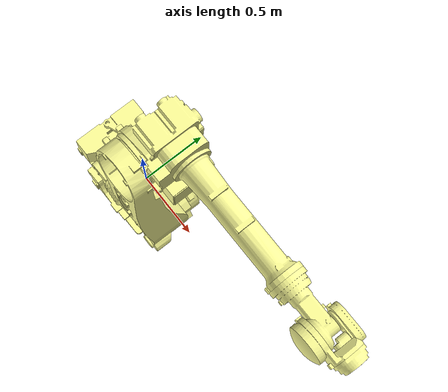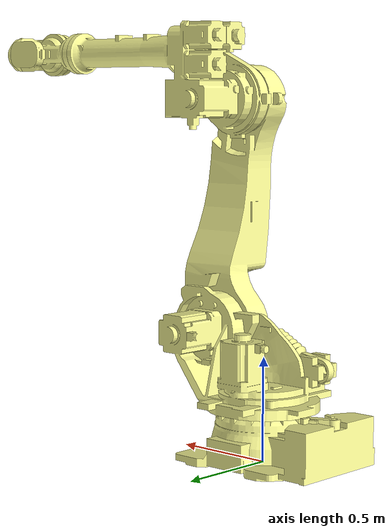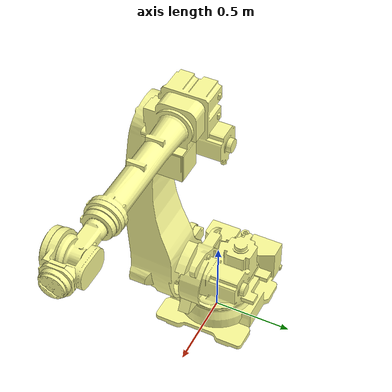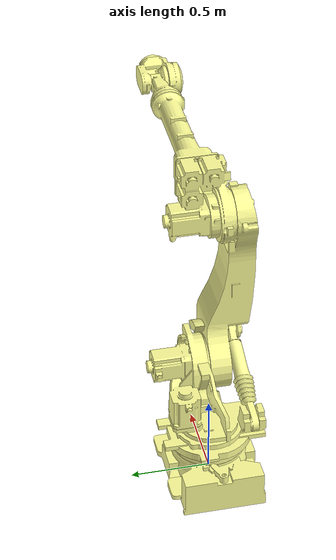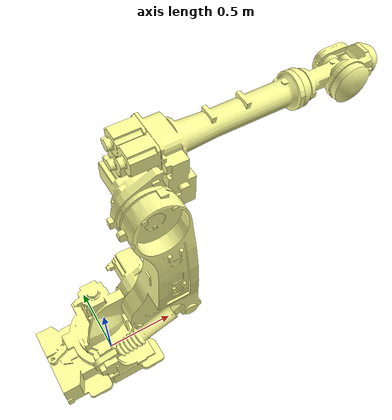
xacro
<?xml version="1.0"?>
<robot xmlns:xacro="http://www.ros.org/wiki/xacro" name="HS220">
    <!-- Links -->

    <link name="world"/>

    <link name="base_link">
        <inertial>
            <origin xyz="-0.10064 4.2977E-06 0.12679" rpy="0 0 0"/>
            <mass value="72.519"/>
            <inertia
		ixx="1.5867"
		ixy="-0.0012389"
		ixz="0.21442"
		iyy="2.8116"
		iyz="-0.0006098"
		izz="3.9898" />
        </inertial>
        <visual>
            <origin xyz="0 0 0" rpy="0 0 0"/>
            <geometry>
                <mesh filename="package://ned2_moveit/HS220/meshes/base_link.STL"/>
            </geometry>
            <material name="">
		<color rgba="1 1 0.6 1" />
      		</material>
        </visual>
        <collision>
            <origin xyz="0 0 0" rpy="0 0 0"/>
            <geometry>
		<mesh filename="package://ned2_moveit/HS220/meshes/base_link.STL" />
	      </geometry>
        </collision>
    </link>

    <link name="led_ring_link">
    </link>

    <link name="shoulder_link">
        <inertial>
            <origin xyz="0.099185 0.040289 0.17611" rpy="0 0 0"/>
            <mass value="48.386"/>
            <inertia
		ixx="1.2542"
		ixy="-0.12807"
		ixz="-0.49169"
		iyy="1.7895"
		iyz="-0.063625"
		izz="1.6768" />
        </inertial>
        <visual>
            <origin xyz="0 0 0" rpy="0 0 0"/>
            <geometry>
                <mesh filename="package://ned2_moveit/HS220/meshes/link_01.STL"/>
            </geometry>
            <material name="">
		<color rgba="1 1 0.6 1" />
      		</material>
        </visual>
        <collision>
            <origin xyz="0 0 0" rpy="0 0 0"/>
            <geometry>
                <mesh filename="package://ned2_moveit/HS220/meshes/link_01.STL"/>
            </geometry>
        </collision>
    </link>

    <link name="arm_link">
        <inertial>
            <origin xyz="0.066298 -0.15035 0.48151" rpy="0 0 0"/>
            <mass value="49.92"/>
            <inertia
		ixx="5.2272"
		ixy="-0.0014584"
		ixz="0.19792"
		iyy="5.3896"
		iyz="0.68752"
		izz="0.72966" />
        </inertial>
        <visual>
            <origin xyz="0 0 0" rpy="0 0 0"/>
            <geometry>
                <mesh filename="package://ned2_moveit/HS220/meshes/link_02.STL"/>
            </geometry>
            <material name="">
		<color rgba="1 1 0.6 1" />
	      </material>
        </visual>
        <collision>
            <origin xyz="0 0 0" rpy="0 0 0"/>
            <geometry>
                <mesh filename="package://ned2_moveit/HS220/meshes/link_02.STL"/>
            </geometry>
        </collision>
    </link>

    <link name="elbow_link">
        <inertial>
            <origin xyz="0.17402 0.16038 0.10935" rpy="0 0 0"/>
            <mass value="57.421"/>
            <inertia
		ixx="0.59891"
		ixy="-0.024944"
		ixz="-0.060521"
		iyy="1.4319"
		iyz="-0.027347"
		izz="1.1563" />
        </inertial>
        <visual>
            <origin xyz="0 0 0" rpy="0 0 0"/>
            <geometry>
                <mesh filename="package://ned2_moveit/HS220/meshes/link_03.STL"/>
            </geometry>
            <material name="">
		<color rgba="1 1 0.6 1" />
	      </material>
        </visual>
        <collision>
            <origin xyz="0 0 0" rpy="0 0 0"/>
            <geometry>
                <mesh filename="package://ned2_moveit/HS220/meshes/link_03.STL"/>
            </geometry>
        </collision>
    </link>

    <link name="forearm_link">
        <inertial>
            <origin xyz="0.062307 -0.0026709 -3.5263E-08" rpy="0 0 0"/>
            <mass value="5.2654"/>
            <inertia
		ixx="0.017275"
		ixy="0.0015212"
		ixz="6.3008E-09"
		iyy="0.033969"
		iyz="-1.5585E-09"
		izz="0.033333" />
        </inertial>
        <visual>
            <origin xyz="0 0 0" rpy="0 0 0"/>
            <geometry>
                <mesh filename="package://ned2_moveit/HS220/meshes/link_04.STL"/>
            </geometry>
            <material name="">
		<color rgba="1 1 0.6 1" />
	      </material>
        </visual>
        <collision>
            <origin xyz="0 0 0" rpy="0 0 0"/>
            <geometry>
                <mesh filename="package://ned2_moveit/HS220/meshes/link_04.STL"/>
            </geometry>
        </collision>
    </link>

    <link name="wrist_link">
        <inertial>
            <origin xyz="0.027034 0.015188 6.8589E-05" rpy="0 0 0"/>
            <mass value="6.256"/>
            <inertia
		ixx="0.027335"
		ixy="0.00047037"
		ixz="-3.7423E-05"
		iyy="0.037076"
		iyz="5.4798E-06"
		izz="0.035004" />
        </inertial>
        <visual>
            <origin xyz="0 0 0"
                    rpy="0 0 0"/>
            <geometry>
                <mesh filename="package://ned2_moveit/HS220/meshes/link_05.STL"/>
            </geometry>
            <material name="">
		<color rgba="1 1 0.6 1" />
	      </material>
        </visual>
        <collision>
            <origin xyz="0 0 0"
                    rpy="0 0 0"/>
            <geometry>
                <mesh filename="package://ned2_moveit/HS220/meshes/link_05.STL"/>
            </geometry>
        </collision>
    </link>

    <link name="hand_link">
        <inertial>
            <origin xyz="0.016758 5.2391E-06 -1.7361E-08" rpy="0 0 0"/>
            <mass value="1.5928"/>
            <inertia
		ixx="0.0054416"
		ixy="-3.7296E-07"
		ixz="8.7708E-10"
		iyy="0.0034471"
		iyz="4.4172E-07"
		izz="0.003445" />
        </inertial>
        <visual>
            <origin xyz="0 0 0" rpy="0 0 0"/>
            <geometry>
                <mesh filename="package://ned2_moveit/HS220/meshes/link_06.STL"/>
            </geometry>
            <material name="">
		<color rgba="1 1 0.6 1" />
	      </material>
        </visual>
        <collision>
            <origin xyz="0 0 0" rpy="0 0 0"/>
            <geometry>
                <mesh filename="package://ned2_moveit/HS220/meshes/link_06.STL"/>
            </geometry>
        </collision>
    </link>

    <link name="tool_link">
    </link>

    <!-- Joints -->

    <joint name="joint_world" type="fixed">
        <parent link="world"/>
        <child link="base_link"/>
        <origin xyz="0 0 0" rpy="0 0 0"/>
    </joint>

    <joint name="joint_1" type="revolute">
        <origin xyz="0.0006505 7.3191E-05 0.253" rpy="0 0 0"/>
        <parent link="base_link"/>
        <child link="shoulder_link"/>
        <axis xyz="0 0 1"/>
        <limit lower="-3.142" upper="3.142" effort="2844" velocity="2.094" />
    </joint>

    <joint name="joint_2" type="revolute">
        <origin xyz="0.31135 -0.067073 0.355" rpy="0 0 0"/>
        <parent link="shoulder_link"/>
        <child link="arm_link"/>
        <axis xyz="0 -1 0"/>
        <limit lower="-1.39626" upper="1.1342" effort="2844" velocity="1.833" />
    </joint>

    <joint name="joint_3" type="revolute">
        <origin xyz="0.0086244 -0.142 1.1096" rpy="0 0 0"/>
        <parent link="arm_link"/>
        <child link="elbow_link"/>
        <axis xyz="0 -1 0"/>
        <limit
	      lower="-1.396"
	      upper="3.316"
	      effort="2844"
	      velocity="2.007" />
    </joint>

    <joint name="joint_4" type="revolute">
        <origin xyz="1.0041 0.18787 0.22038" rpy="0 0 0"/>
        <parent link="elbow_link"/>
        <child link="forearm_link"/>
        <axis xyz="1 0 0"/>
        <limit
	      lower="-6.284"
	      upper="6.284"
	      effort="1422"
	      velocity="2.531" />
    </joint>

    <joint name="joint_5" type="revolute">
        <origin xyz="0.2335 -0.055 0" rpy="0 0 0"/>
        <parent link="forearm_link"/>
        <child link="wrist_link"/>
        <axis xyz="0 1 0"/>
        <limit
	      lower="-2.234"
	      upper="2.234"
	      effort="1422"
	      velocity="2.531" />
    </joint>

    <joint name="joint_6" type="revolute">
        <origin xyz="0.157 0.055 0" rpy="0 0 0"/>
        <parent link="wrist_link"/>
        <child link="hand_link"/>
        <axis xyz="1 0 0"/>
        <limit
	      lower="-6.284"
	      upper="6.284"
	      effort="770"
	      velocity="3.84" />
    </joint>

    <joint name="hand_tool_joint" type="fixed">
        <parent link="hand_link"/>
        <child link="tool_link"/>
        <origin xyz="0 0 0" rpy="0 0 0"/>
    </joint>

    <joint name="joint_led_ring" type="fixed">
        <parent link="world"/>
        <child link="led_ring_link"/>
        <origin xyz="0 0 0.0923" rpy="0 0 0"/>
    </joint>

</robot>
